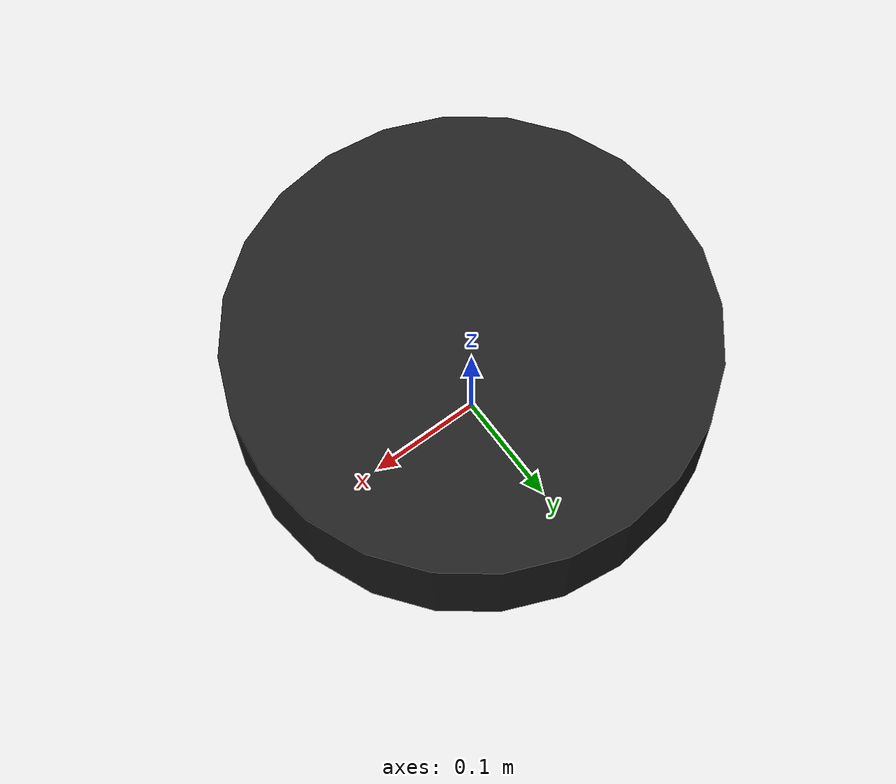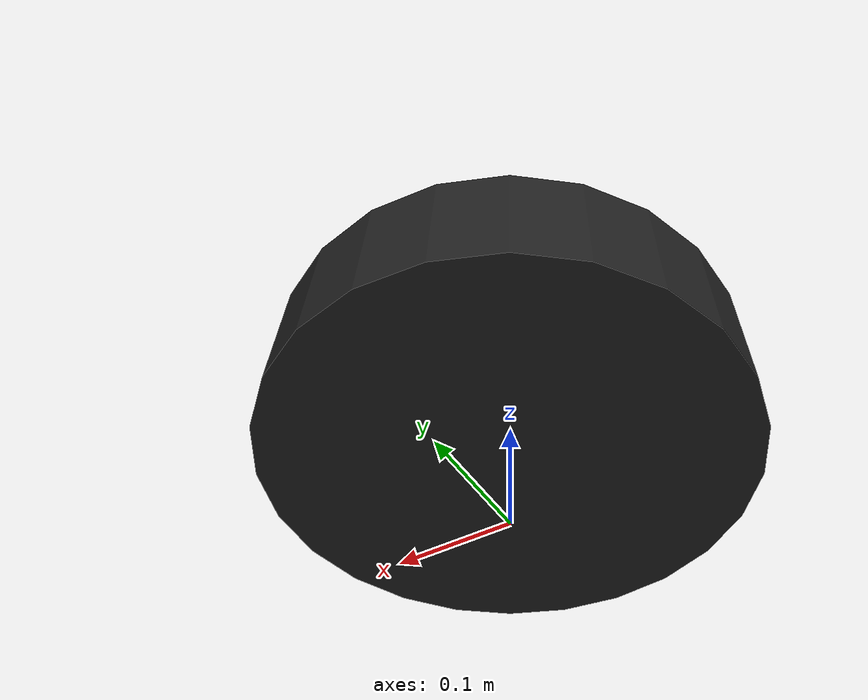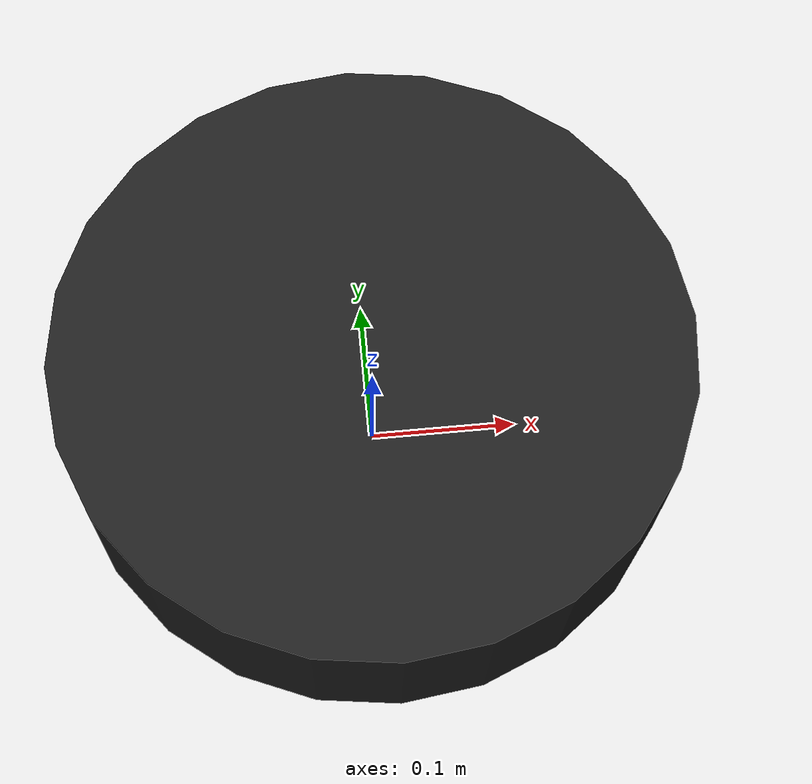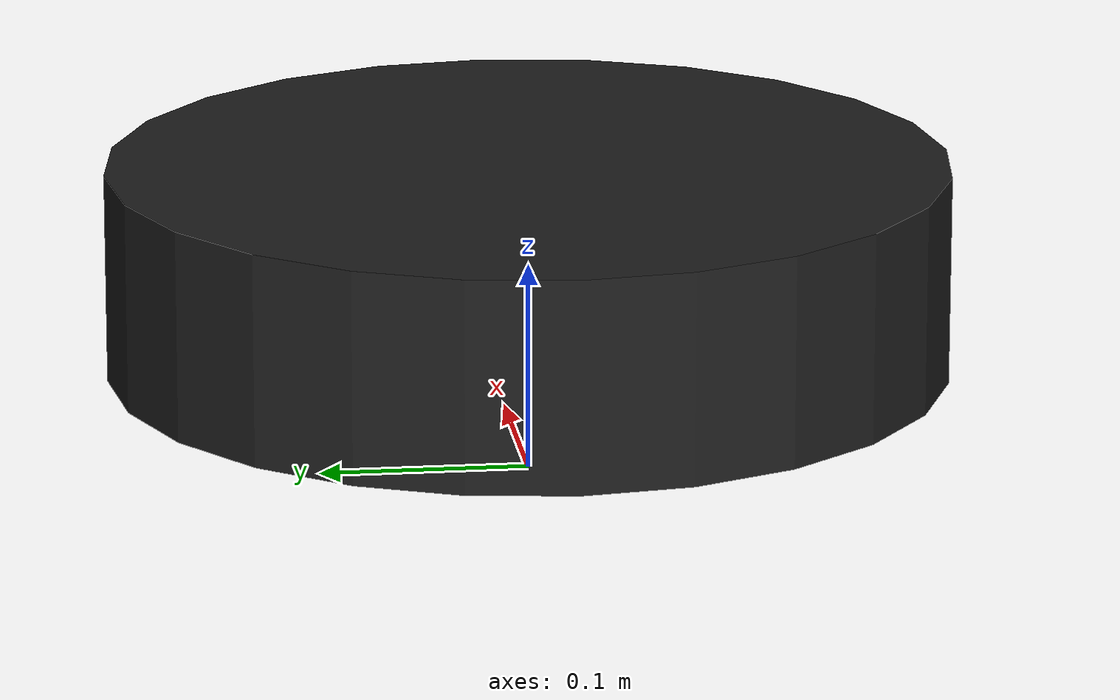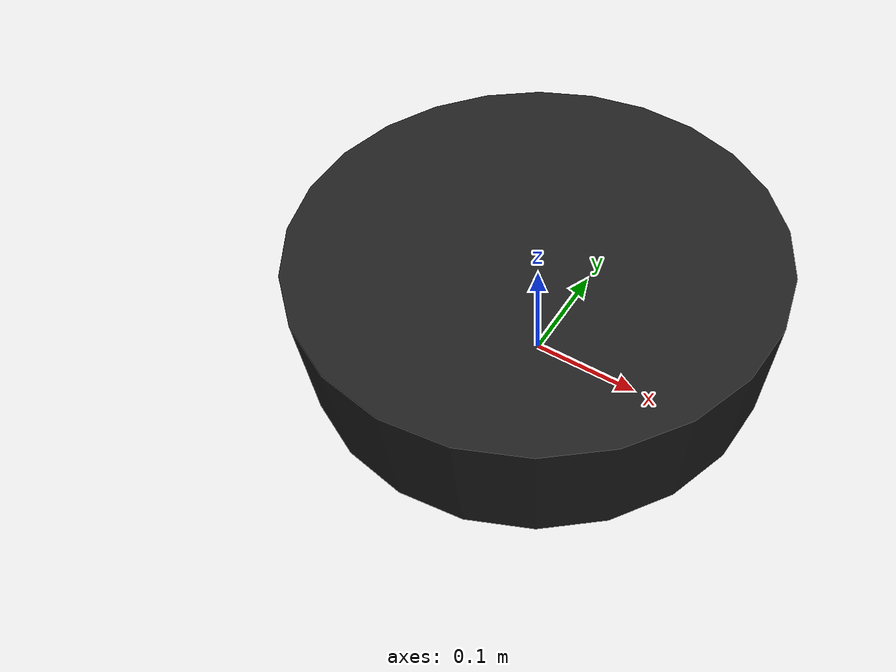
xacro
<?xml version="1.0"?>

<robot  xmlns:xacro="http://ros.org/wiki/xacro">

    <xacro:property name="base_radius" value="0.2"/>
    <xacro:property name="base_hight" value="0.1"/>
    <xacro:property name="wheel_radius" value="0.05"/>
    <xacro:property name="wheel_length" value="0.05"/>

    <link name="base_footprint"/>
    <link name="base_link">
        <visual>
            <origin xyz="0 0 ${wheel_radius}" rpy="0 0 0"/>
            <geometry>
                <cylinder radius="${base_radius}" length="${base_hight}" />
            </geometry>
            <material name="black"/>
        </visual>
        <collision>
                <geometry>
                    <cylinder radius="${base_radius}" length="${base_hight}" />
                </geometry>
                <origin xyz="0 0 ${wheel_radius}" rpy="0 0 0" />
            </collision>
            <xacro:cylinder_inertia m="10.0" r="${base_radius}" l="${base_hight}"
                                    o_xyz="0 0 ${wheel_radius}" o_rpy="0 0 0" />
    </link>

    <joint name="base_joint" type="fixed">
        <parent link="base_footprint"/>
        <child link="base_link"/>
        <origin xyz="0 0 ${wheel_radius}" rpy="0 0 0"/>
    </joint>

</robot>
